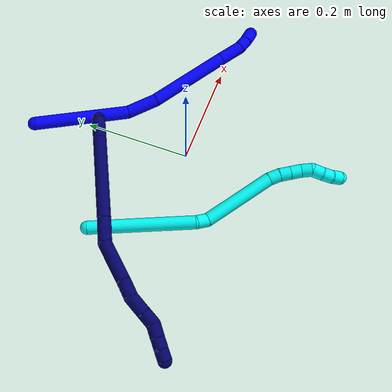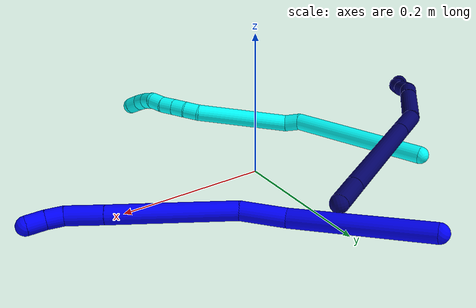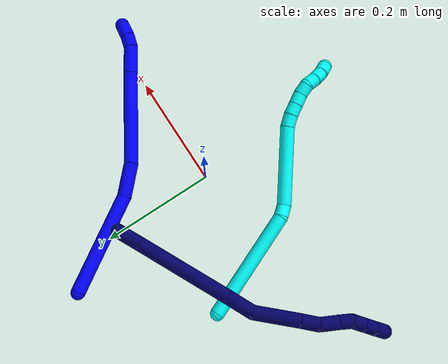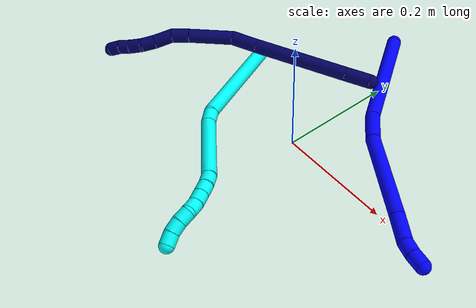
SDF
<sdf version="1.7">
 <world name="default">
  <model name="1">
   <static>0</static>
   <link name="1">
    <collision name="collision-cylinder-e_1_1_4">
     <pose>0.022331 -0.06528 -0.058959 2.30536 0.24861 0.548275</pose>
     <geometry><cylinder><radius>0.0125</radius><length>0.181508</length></cylinder></geometry>
     <surface>
      <friction><ode><mu>1.16</mu><mu2>1.16</mu2><slip1>0</slip1><slip2>0</slip2></ode></friction>
      <contact><ode><kp>1e+06</kp><kd>1</kd><max_vel>0</max_vel><min_depth>0.001</min_depth></ode></contact>
     </surface>
    </collision>
    <visual name="visual-cylinder-e_1_1_4">
     <pose>0.022331 -0.06528 -0.058959 2.30536 0.24861 0.548275</pose>
     <geometry><cylinder><radius>0.0125</radius><length>0.181508</length></cylinder></geometry>
     <material><ambient>0 0 1 1</ambient></material>
    </visual>
    <collision name="collision-cylinder-e_2_4_5">
     <pose>0.059158 -0.151987 -0.132573 2.17069 0.509287 0.916696</pose>
     <geometry><cylinder><radius>0.0125</radius><length>0.059465</length></cylinder></geometry>
     <surface>
      <friction><ode><mu>1.16</mu><mu2>1.16</mu2><slip1>0</slip1><slip2>0</slip2></ode></friction>
      <contact><ode><kp>1e+06</kp><kd>1</kd><max_vel>0</max_vel><min_depth>0.001</min_depth></ode></contact>
     </surface>
    </collision>
    <visual name="visual-cylinder-e_2_4_5">
     <pose>0.059158 -0.151987 -0.132573 2.17069 0.509287 0.916696</pose>
     <geometry><cylinder><radius>0.0125</radius><length>0.059465</length></cylinder></geometry>
     <material><ambient>0 0 1 1</ambient></material>
    </visual>
    <collision name="collision-cylinder-e_3_5_6">
     <pose>0.126122 -0.218362 -0.191152 2.34465 0.695647 1.42194</pose>
     <geometry><cylinder><radius>0.0125</radius><length>0.163739</length></cylinder></geometry>
     <surface>
      <friction><ode><mu>1.16</mu><mu2>1.16</mu2><slip1>0</slip1><slip2>0</slip2></ode></friction>
      <contact><ode><kp>1e+06</kp><kd>1</kd><max_vel>0</max_vel><min_depth>0.001</min_depth></ode></contact>
     </surface>
    </collision>
    <visual name="visual-cylinder-e_3_5_6">
     <pose>0.126122 -0.218362 -0.191152 2.34465 0.695647 1.42194</pose>
     <geometry><cylinder><radius>0.0125</radius><length>0.163739</length></cylinder></geometry>
     <material><ambient>0 0 1 1</ambient></material>
    </visual>
    <collision name="collision-cylinder-e_4_6_7">
     <pose>0.193956 -0.277043 -0.248332 2.33861 0.677776 1.38584</pose>
     <geometry><cylinder><radius>0.0125</radius><length>0.049006</length></cylinder></geometry>
     <surface>
      <friction><ode><mu>1.16</mu><mu2>1.16</mu2><slip1>0</slip1><slip2>0</slip2></ode></friction>
      <contact><ode><kp>1e+06</kp><kd>1</kd><max_vel>0</max_vel><min_depth>0.001</min_depth></ode></contact>
     </surface>
    </collision>
    <visual name="visual-cylinder-e_4_6_7">
     <pose>0.193956 -0.277043 -0.248332 2.33861 0.677776 1.38584</pose>
     <geometry><cylinder><radius>0.0125</radius><length>0.049006</length></cylinder></geometry>
     <material><ambient>0 0 1 1</ambient></material>
    </visual>
    <collision name="collision-cylinder-e_5_7_8">
     <pose>0.218266 -0.294428 -0.267357 2.57695 0.91881 2.08096</pose>
     <geometry><cylinder><radius>0.0125</radius><length>0.022506</length></cylinder></geometry>
     <surface>
      <friction><ode><mu>1.16</mu><mu2>1.16</mu2><slip1>0</slip1><slip2>0</slip2></ode></friction>
      <contact><ode><kp>1e+06</kp><kd>1</kd><max_vel>0</max_vel><min_depth>0.001</min_depth></ode></contact>
     </surface>
    </collision>
    <visual name="visual-cylinder-e_5_7_8">
     <pose>0.218266 -0.294428 -0.267357 2.57695 0.91881 2.08096</pose>
     <geometry><cylinder><radius>0.0125</radius><length>0.022506</length></cylinder></geometry>
     <material><ambient>0 0 1 1</ambient></material>
    </visual>
    <collision name="collision-cylinder-e_6_8_2">
     <pose>0.237359 -0.300367 -0.278881 2.76367 1.0229 2.48479</pose>
     <geometry><cylinder><radius>0.0125</radius><length>0.023776</length></cylinder></geometry>
     <surface>
      <friction><ode><mu>1.16</mu><mu2>1.16</mu2><slip1>0</slip1><slip2>0</slip2></ode></friction>
      <contact><ode><kp>1e+06</kp><kd>1</kd><max_vel>0</max_vel><min_depth>0.001</min_depth></ode></contact>
     </surface>
    </collision>
    <visual name="visual-cylinder-e_6_8_2">
     <pose>0.237359 -0.300367 -0.278881 2.76367 1.0229 2.48479</pose>
     <geometry><cylinder><radius>0.0125</radius><length>0.023776</length></cylinder></geometry>
     <material><ambient>0 0 1 1</ambient></material>
    </visual>
    <collision name="collision-sphere-2">
     <pose>0.247506 -0.302652 -0.284636 0 -0 0</pose>
     <geometry><sphere><radius>0.0125</radius></sphere></geometry>
     <surface>
      <friction><ode><mu>1.16</mu><mu2>1.16</mu2><slip1>0</slip1><slip2>0</slip2></ode></friction>
      <contact><ode><kp>1e+06</kp><kd>1</kd><max_vel>0</max_vel><min_depth>0.001</min_depth></ode></contact>
     </surface>
    </collision>
    <visual name="visual-sphere-2">
     <pose>0.247506 -0.302652 -0.284636 0 -0 0</pose>
     <geometry><sphere><radius>0.0125</radius></sphere></geometry>
     <material><ambient>0 0 1 1</ambient></material>
    </visual>
    <collision name="collision-sphere-4">
     <pose>0.044661 -0.13056 -0.117918 0 -0 0</pose>
     <geometry><sphere><radius>0.0125</radius></sphere></geometry>
     <surface>
      <friction><ode><mu>1.16</mu><mu2>1.16</mu2><slip1>0</slip1><slip2>0</slip2></ode></friction>
      <contact><ode><kp>1e+06</kp><kd>1</kd><max_vel>0</max_vel><min_depth>0.001</min_depth></ode></contact>
     </surface>
    </collision>
    <visual name="visual-sphere-4">
     <pose>0.044661 -0.13056 -0.117918 0 -0 0</pose>
     <geometry><sphere><radius>0.0125</radius></sphere></geometry>
     <material><ambient>0 0 1 1</ambient></material>
    </visual>
    <collision name="collision-sphere-1">
     <geometry><sphere><radius>0.0125</radius></sphere></geometry>
     <surface>
      <friction><ode><mu>1.16</mu><mu2>1.16</mu2><slip1>0</slip1><slip2>0</slip2></ode></friction>
      <contact><ode><kp>1e+06</kp><kd>1</kd><max_vel>0</max_vel><min_depth>0.001</min_depth></ode></contact>
     </surface>
    </collision>
    <visual name="visual-sphere-1">
     <geometry><sphere><radius>0.0125</radius></sphere></geometry>
     <material><ambient>0 0 1 1</ambient></material>
    </visual>
    <collision name="collision-sphere-8">
     <pose>0.227211 -0.298082 -0.273125 0 -0 0</pose>
     <geometry><sphere><radius>0.0125</radius></sphere></geometry>
     <surface>
      <friction><ode><mu>1.16</mu><mu2>1.16</mu2><slip1>0</slip1><slip2>0</slip2></ode></friction>
      <contact><ode><kp>1e+06</kp><kd>1</kd><max_vel>0</max_vel><min_depth>0.001</min_depth></ode></contact>
     </surface>
    </collision>
    <visual name="visual-sphere-8">
     <pose>0.227211 -0.298082 -0.273125 0 -0 0</pose>
     <geometry><sphere><radius>0.0125</radius></sphere></geometry>
     <material><ambient>0 0 1 1</ambient></material>
    </visual>
    <collision name="collision-sphere-5">
     <pose>0.073654 -0.173413 -0.147229 0 -0 0</pose>
     <geometry><sphere><radius>0.0125</radius></sphere></geometry>
     <surface>
      <friction><ode><mu>1.16</mu><mu2>1.16</mu2><slip1>0</slip1><slip2>0</slip2></ode></friction>
      <contact><ode><kp>1e+06</kp><kd>1</kd><max_vel>0</max_vel><min_depth>0.001</min_depth></ode></contact>
     </surface>
    </collision>
    <visual name="visual-sphere-5">
     <pose>0.073654 -0.173413 -0.147229 0 -0 0</pose>
     <geometry><sphere><radius>0.0125</radius></sphere></geometry>
     <material><ambient>0 0 1 1</ambient></material>
    </visual>
    <collision name="collision-sphere-6">
     <pose>0.178591 -0.263311 -0.235074 0 -0 0</pose>
     <geometry><sphere><radius>0.0125</radius></sphere></geometry>
     <surface>
      <friction><ode><mu>1.16</mu><mu2>1.16</mu2><slip1>0</slip1><slip2>0</slip2></ode></friction>
      <contact><ode><kp>1e+06</kp><kd>1</kd><max_vel>0</max_vel><min_depth>0.001</min_depth></ode></contact>
     </surface>
    </collision>
    <visual name="visual-sphere-6">
     <pose>0.178591 -0.263311 -0.235074 0 -0 0</pose>
     <geometry><sphere><radius>0.0125</radius></sphere></geometry>
     <material><ambient>0 0 1 1</ambient></material>
    </visual>
    <collision name="collision-sphere-7">
     <pose>0.209321 -0.290775 -0.261589 0 -0 0</pose>
     <geometry><sphere><radius>0.0125</radius></sphere></geometry>
     <surface>
      <friction><ode><mu>1.16</mu><mu2>1.16</mu2><slip1>0</slip1><slip2>0</slip2></ode></friction>
      <contact><ode><kp>1e+06</kp><kd>1</kd><max_vel>0</max_vel><min_depth>0.001</min_depth></ode></contact>
     </surface>
    </collision>
    <visual name="visual-sphere-7">
     <pose>0.209321 -0.290775 -0.261589 0 -0 0</pose>
     <geometry><sphere><radius>0.0125</radius></sphere></geometry>
     <material><ambient>0 0 1 1</ambient></material>
    </visual>
    <inertial>
     <pose>0.096566 -0.167972 -0.149403 0 -0 0</pose>
     <mass>0.5</mass>
     <inertia>
      <ixx>0.001053</ixx>
      <ixy>0</ixy>
      <ixz>0</ixz>
      <iyy>0.000434</iyy>
      <iyz>0</iyz>
      <izz>0.000184</izz>
     </inertia>
    </inertial>
   </link>
   <pose>-0.05213 0.288507 0.033532 -0.533135 -0.26988 0.292147</pose>
  </model>
  <model name="3">
   <static>0</static>
   <link name="3">
    <collision name="collision-cylinder-e_1_1_4">
     <pose>0.026673 -0.045091 0.083396 0.495665 0.274261 0.069807</pose>
     <geometry><cylinder><radius>0.0125</radius><length>0.196972</length></cylinder></geometry>
     <surface>
      <friction><ode><mu>1.16</mu><mu2>1.16</mu2><slip1>0</slip1><slip2>0</slip2></ode></friction>
      <contact><ode><kp>1e+06</kp><kd>1</kd><max_vel>0</max_vel><min_depth>0.001</min_depth></ode></contact>
     </surface>
    </collision>
    <visual name="visual-cylinder-e_1_1_4">
     <pose>0.026673 -0.045091 0.083396 0.495665 0.274261 0.069807</pose>
     <geometry><cylinder><radius>0.0125</radius><length>0.196972</length></cylinder></geometry>
     <material><ambient>0.003922 1 0.996078 1</ambient></material>
    </visual>
    <collision name="collision-cylinder-e_2_4_5">
     <pose>0.05732 -0.098474 0.173483 0.891786 0.356904 0.172009</pose>
     <geometry><cylinder><radius>0.0125</radius><length>0.022744</length></cylinder></geometry>
     <surface>
      <friction><ode><mu>1.16</mu><mu2>1.16</mu2><slip1>0</slip1><slip2>0</slip2></ode></friction>
      <contact><ode><kp>1e+06</kp><kd>1</kd><max_vel>0</max_vel><min_depth>0.001</min_depth></ode></contact>
     </surface>
    </collision>
    <visual name="visual-cylinder-e_2_4_5">
     <pose>0.05732 -0.098474 0.173483 0.891786 0.356904 0.172009</pose>
     <geometry><cylinder><radius>0.0125</radius><length>0.022744</length></cylinder></geometry>
     <material><ambient>0.003922 1 0.996078 1</ambient></material>
    </visual>
    <collision name="collision-cylinder-e_3_5_6">
     <pose>0.109946 -0.139719 0.216183 0.741118 0.78377 0.318391</pose>
     <geometry><cylinder><radius>0.0125</radius><length>0.137835</length></cylinder></geometry>
     <surface>
      <friction><ode><mu>1.16</mu><mu2>1.16</mu2><slip1>0</slip1><slip2>0</slip2></ode></friction>
      <contact><ode><kp>1e+06</kp><kd>1</kd><max_vel>0</max_vel><min_depth>0.001</min_depth></ode></contact>
     </surface>
    </collision>
    <visual name="visual-cylinder-e_3_5_6">
     <pose>0.109946 -0.139719 0.216183 0.741118 0.78377 0.318391</pose>
     <geometry><cylinder><radius>0.0125</radius><length>0.137835</length></cylinder></geometry>
     <material><ambient>0.003922 1 0.996078 1</ambient></material>
    </visual>
    <collision name="collision-cylinder-e_4_6_7">
     <pose>0.164535 -0.17755 0.259741 0.573742 0.583681 0.17679</pose>
     <geometry><cylinder><radius>0.0125</radius><length>0.021543</length></cylinder></geometry>
     <surface>
      <friction><ode><mu>1.16</mu><mu2>1.16</mu2><slip1>0</slip1><slip2>0</slip2></ode></friction>
      <contact><ode><kp>1e+06</kp><kd>1</kd><max_vel>0</max_vel><min_depth>0.001</min_depth></ode></contact>
     </surface>
    </collision>
    <visual name="visual-cylinder-e_4_6_7">
     <pose>0.164535 -0.17755 0.259741 0.573742 0.583681 0.17679</pose>
     <geometry><cylinder><radius>0.0125</radius><length>0.021543</length></cylinder></geometry>
     <material><ambient>0.003922 1 0.996078 1</ambient></material>
    </visual>
    <collision name="collision-cylinder-e_5_7_8">
     <pose>0.174546 -0.187333 0.275202 0.554841 0.412697 0.119077</pose>
     <geometry><cylinder><radius>0.0125</radius><length>0.020322</length></cylinder></geometry>
     <surface>
      <friction><ode><mu>1.16</mu><mu2>1.16</mu2><slip1>0</slip1><slip2>0</slip2></ode></friction>
      <contact><ode><kp>1e+06</kp><kd>1</kd><max_vel>0</max_vel><min_depth>0.001</min_depth></ode></contact>
     </surface>
    </collision>
    <visual name="visual-cylinder-e_5_7_8">
     <pose>0.174546 -0.187333 0.275202 0.554841 0.412697 0.119077</pose>
     <geometry><cylinder><radius>0.0125</radius><length>0.020322</length></cylinder></geometry>
     <material><ambient>0.003922 1 0.996078 1</ambient></material>
    </visual>
    <collision name="collision-cylinder-e_6_8_9">
     <pose>0.182771 -0.19728 0.290972 0.570597 0.418103 0.124287</pose>
     <geometry><cylinder><radius>0.0125</radius><length>0.020437</length></cylinder></geometry>
     <surface>
      <friction><ode><mu>1.16</mu><mu2>1.16</mu2><slip1>0</slip1><slip2>0</slip2></ode></friction>
      <contact><ode><kp>1e+06</kp><kd>1</kd><max_vel>0</max_vel><min_depth>0.001</min_depth></ode></contact>
     </surface>
    </collision>
    <visual name="visual-cylinder-e_6_8_9">
     <pose>0.182771 -0.19728 0.290972 0.570597 0.418103 0.124287</pose>
     <geometry><cylinder><radius>0.0125</radius><length>0.020437</length></cylinder></geometry>
     <material><ambient>0.003922 1 0.996078 1</ambient></material>
    </visual>
    <collision name="collision-cylinder-e_7_9_10">
     <pose>0.190005 -0.206052 0.307594 0.402277 0.313289 0.064384</pose>
     <geometry><cylinder><radius>0.0125</radius><length>0.02002</length></cylinder></geometry>
     <surface>
      <friction><ode><mu>1.16</mu><mu2>1.16</mu2><slip1>0</slip1><slip2>0</slip2></ode></friction>
      <contact><ode><kp>1e+06</kp><kd>1</kd><max_vel>0</max_vel><min_depth>0.001</min_depth></ode></contact>
     </surface>
    </collision>
    <visual name="visual-cylinder-e_7_9_10">
     <pose>0.190005 -0.206052 0.307594 0.402277 0.313289 0.064384</pose>
     <geometry><cylinder><radius>0.0125</radius><length>0.02002</length></cylinder></geometry>
     <material><ambient>0.003922 1 0.996078 1</ambient></material>
    </visual>
    <collision name="collision-cylinder-e_8_10_11">
     <pose>0.191738 -0.215721 0.32434 0.639678 -0.13502 -0.044781</pose>
     <geometry><cylinder><radius>0.0125</radius><length>0.020085</length></cylinder></geometry>
     <surface>
      <friction><ode><mu>1.16</mu><mu2>1.16</mu2><slip1>0</slip1><slip2>0</slip2></ode></friction>
      <contact><ode><kp>1e+06</kp><kd>1</kd><max_vel>0</max_vel><min_depth>0.001</min_depth></ode></contact>
     </surface>
    </collision>
    <visual name="visual-cylinder-e_8_10_11">
     <pose>0.191738 -0.215721 0.32434 0.639678 -0.13502 -0.044781</pose>
     <geometry><cylinder><radius>0.0125</radius><length>0.020085</length></cylinder></geometry>
     <material><ambient>0.003922 1 0.996078 1</ambient></material>
    </visual>
    <collision name="collision-cylinder-e_9_11_12">
     <pose>0.189565 -0.228803 0.339286 0.798091 -0.082126 -0.034646</pose>
     <geometry><cylinder><radius>0.0125</radius><length>0.020015</length></cylinder></geometry>
     <surface>
      <friction><ode><mu>1.16</mu><mu2>1.16</mu2><slip1>0</slip1><slip2>0</slip2></ode></friction>
      <contact><ode><kp>1e+06</kp><kd>1</kd><max_vel>0</max_vel><min_depth>0.001</min_depth></ode></contact>
     </surface>
    </collision>
    <visual name="visual-cylinder-e_9_11_12">
     <pose>0.189565 -0.228803 0.339286 0.798091 -0.082126 -0.034646</pose>
     <geometry><cylinder><radius>0.0125</radius><length>0.020015</length></cylinder></geometry>
     <material><ambient>0.003922 1 0.996078 1</ambient></material>
    </visual>
    <collision name="collision-cylinder-e_10_12_2">
     <pose>0.189357 -0.244184 0.351905 0.96928 0.061275 0.03227</pose>
     <geometry><cylinder><radius>0.0125</radius><length>0.020027</length></cylinder></geometry>
     <surface>
      <friction><ode><mu>1.16</mu><mu2>1.16</mu2><slip1>0</slip1><slip2>0</slip2></ode></friction>
      <contact><ode><kp>1e+06</kp><kd>1</kd><max_vel>0</max_vel><min_depth>0.001</min_depth></ode></contact>
     </surface>
    </collision>
    <visual name="visual-cylinder-e_10_12_2">
     <pose>0.189357 -0.244184 0.351905 0.96928 0.061275 0.03227</pose>
     <geometry><cylinder><radius>0.0125</radius><length>0.020027</length></cylinder></geometry>
     <material><ambient>0.003922 1 0.996078 1</ambient></material>
    </visual>
    <collision name="collision-sphere-2">
     <pose>0.18997 -0.252425 0.357561 0 -0 0</pose>
     <geometry><sphere><radius>0.0125</radius></sphere></geometry>
     <surface>
      <friction><ode><mu>1.16</mu><mu2>1.16</mu2><slip1>0</slip1><slip2>0</slip2></ode></friction>
      <contact><ode><kp>1e+06</kp><kd>1</kd><max_vel>0</max_vel><min_depth>0.001</min_depth></ode></contact>
     </surface>
    </collision>
    <visual name="visual-sphere-2">
     <pose>0.18997 -0.252425 0.357561 0 -0 0</pose>
     <geometry><sphere><radius>0.0125</radius></sphere></geometry>
     <material><ambient>0.003922 1 0.996078 1</ambient></material>
    </visual>
    <collision name="collision-sphere-12">
     <pose>0.188744 -0.235944 0.346249 0 -0 0</pose>
     <geometry><sphere><radius>0.0125</radius></sphere></geometry>
     <surface>
      <friction><ode><mu>1.16</mu><mu2>1.16</mu2><slip1>0</slip1><slip2>0</slip2></ode></friction>
      <contact><ode><kp>1e+06</kp><kd>1</kd><max_vel>0</max_vel><min_depth>0.001</min_depth></ode></contact>
     </surface>
    </collision>
    <visual name="visual-sphere-12">
     <pose>0.188744 -0.235944 0.346249 0 -0 0</pose>
     <geometry><sphere><radius>0.0125</radius></sphere></geometry>
     <material><ambient>0.003922 1 0.996078 1</ambient></material>
    </visual>
    <collision name="collision-sphere-11">
     <pose>0.190386 -0.221661 0.332324 0 -0 0</pose>
     <geometry><sphere><radius>0.0125</radius></sphere></geometry>
     <surface>
      <friction><ode><mu>1.16</mu><mu2>1.16</mu2><slip1>0</slip1><slip2>0</slip2></ode></friction>
      <contact><ode><kp>1e+06</kp><kd>1</kd><max_vel>0</max_vel><min_depth>0.001</min_depth></ode></contact>
     </surface>
    </collision>
    <visual name="visual-sphere-11">
     <pose>0.190386 -0.221661 0.332324 0 -0 0</pose>
     <geometry><sphere><radius>0.0125</radius></sphere></geometry>
     <material><ambient>0.003922 1 0.996078 1</ambient></material>
    </visual>
    <collision name="collision-sphere-10">
     <pose>0.19309 -0.209781 0.316356 0 -0 0</pose>
     <geometry><sphere><radius>0.0125</radius></sphere></geometry>
     <surface>
      <friction><ode><mu>1.16</mu><mu2>1.16</mu2><slip1>0</slip1><slip2>0</slip2></ode></friction>
      <contact><ode><kp>1e+06</kp><kd>1</kd><max_vel>0</max_vel><min_depth>0.001</min_depth></ode></contact>
     </surface>
    </collision>
    <visual name="visual-sphere-10">
     <pose>0.19309 -0.209781 0.316356 0 -0 0</pose>
     <geometry><sphere><radius>0.0125</radius></sphere></geometry>
     <material><ambient>0.003922 1 0.996078 1</ambient></material>
    </visual>
    <collision name="collision-sphere-9">
     <pose>0.18692 -0.202324 0.298831 0 -0 0</pose>
     <geometry><sphere><radius>0.0125</radius></sphere></geometry>
     <surface>
      <friction><ode><mu>1.16</mu><mu2>1.16</mu2><slip1>0</slip1><slip2>0</slip2></ode></friction>
      <contact><ode><kp>1e+06</kp><kd>1</kd><max_vel>0</max_vel><min_depth>0.001</min_depth></ode></contact>
     </surface>
    </collision>
    <visual name="visual-sphere-9">
     <pose>0.18692 -0.202324 0.298831 0 -0 0</pose>
     <geometry><sphere><radius>0.0125</radius></sphere></geometry>
     <material><ambient>0.003922 1 0.996078 1</ambient></material>
    </visual>
    <collision name="collision-sphere-4">
     <pose>0.053347 -0.090182 0.166791 0 -0 0</pose>
     <geometry><sphere><radius>0.0125</radius></sphere></geometry>
     <surface>
      <friction><ode><mu>1.16</mu><mu2>1.16</mu2><slip1>0</slip1><slip2>0</slip2></ode></friction>
      <contact><ode><kp>1e+06</kp><kd>1</kd><max_vel>0</max_vel><min_depth>0.001</min_depth></ode></contact>
     </surface>
    </collision>
    <visual name="visual-sphere-4">
     <pose>0.053347 -0.090182 0.166791 0 -0 0</pose>
     <geometry><sphere><radius>0.0125</radius></sphere></geometry>
     <material><ambient>0.003922 1 0.996078 1</ambient></material>
    </visual>
    <collision name="collision-sphere-1">
     <geometry><sphere><radius>0.0125</radius></sphere></geometry>
     <surface>
      <friction><ode><mu>1.16</mu><mu2>1.16</mu2><slip1>0</slip1><slip2>0</slip2></ode></friction>
      <contact><ode><kp>1e+06</kp><kd>1</kd><max_vel>0</max_vel><min_depth>0.001</min_depth></ode></contact>
     </surface>
    </collision>
    <visual name="visual-sphere-1">
     <geometry><sphere><radius>0.0125</radius></sphere></geometry>
     <material><ambient>0.003922 1 0.996078 1</ambient></material>
    </visual>
    <collision name="collision-sphere-8">
     <pose>0.178622 -0.192236 0.283114 0 -0 0</pose>
     <geometry><sphere><radius>0.0125</radius></sphere></geometry>
     <surface>
      <friction><ode><mu>1.16</mu><mu2>1.16</mu2><slip1>0</slip1><slip2>0</slip2></ode></friction>
      <contact><ode><kp>1e+06</kp><kd>1</kd><max_vel>0</max_vel><min_depth>0.001</min_depth></ode></contact>
     </surface>
    </collision>
    <visual name="visual-sphere-8">
     <pose>0.178622 -0.192236 0.283114 0 -0 0</pose>
     <geometry><sphere><radius>0.0125</radius></sphere></geometry>
     <material><ambient>0.003922 1 0.996078 1</ambient></material>
    </visual>
    <collision name="collision-sphere-5">
     <pose>0.061293 -0.106765 0.180175 0 -0 0</pose>
     <geometry><sphere><radius>0.0125</radius></sphere></geometry>
     <surface>
      <friction><ode><mu>1.16</mu><mu2>1.16</mu2><slip1>0</slip1><slip2>0</slip2></ode></friction>
      <contact><ode><kp>1e+06</kp><kd>1</kd><max_vel>0</max_vel><min_depth>0.001</min_depth></ode></contact>
     </surface>
    </collision>
    <visual name="visual-sphere-5">
     <pose>0.061293 -0.106765 0.180175 0 -0 0</pose>
     <geometry><sphere><radius>0.0125</radius></sphere></geometry>
     <material><ambient>0.003922 1 0.996078 1</ambient></material>
    </visual>
    <collision name="collision-sphere-6">
     <pose>0.158599 -0.172672 0.252192 0 -0 0</pose>
     <geometry><sphere><radius>0.0125</radius></sphere></geometry>
     <surface>
      <friction><ode><mu>1.16</mu><mu2>1.16</mu2><slip1>0</slip1><slip2>0</slip2></ode></friction>
      <contact><ode><kp>1e+06</kp><kd>1</kd><max_vel>0</max_vel><min_depth>0.001</min_depth></ode></contact>
     </surface>
    </collision>
    <visual name="visual-sphere-6">
     <pose>0.158599 -0.172672 0.252192 0 -0 0</pose>
     <geometry><sphere><radius>0.0125</radius></sphere></geometry>
     <material><ambient>0.003922 1 0.996078 1</ambient></material>
    </visual>
    <collision name="collision-sphere-7">
     <pose>0.170471 -0.182429 0.26729 0 -0 0</pose>
     <geometry><sphere><radius>0.0125</radius></sphere></geometry>
     <surface>
      <friction><ode><mu>1.16</mu><mu2>1.16</mu2><slip1>0</slip1><slip2>0</slip2></ode></friction>
      <contact><ode><kp>1e+06</kp><kd>1</kd><max_vel>0</max_vel><min_depth>0.001</min_depth></ode></contact>
     </surface>
    </collision>
    <visual name="visual-sphere-7">
     <pose>0.170471 -0.182429 0.26729 0 -0 0</pose>
     <geometry><sphere><radius>0.0125</radius></sphere></geometry>
     <material><ambient>0.003922 1 0.996078 1</ambient></material>
    </visual>
    <inertial>
     <pose>0.095561 -0.119942 0.187631 0 -0 0</pose>
     <mass>0.5</mass>
     <inertia>
      <ixx>0.000889</ixx>
      <ixy>0</ixy>
      <ixz>0</ixz>
      <iyy>0.000845</iyy>
      <iyz>0</iyz>
      <izz>0.000102</izz>
     </inertia>
    </inertial>
   </link>
   <pose>-0.209281 0.111306 0.012351 1.20726 -0.516909 0.102642</pose>
  </model>
  <model name="7">
   <static>0</static>
   <link name="7">
    <collision name="collision-cylinder-e_1_1_4">
     <pose>-0.016923 0.007039 -0.013927 -2.67361 -0.825907 2.14513</pose>
     <geometry><cylinder><radius>0.0125</radius><length>0.046039</length></cylinder></geometry>
     <surface>
      <friction><ode><mu>1.16</mu><mu2>1.16</mu2><slip1>0</slip1><slip2>0</slip2></ode></friction>
      <contact><ode><kp>1e+06</kp><kd>1</kd><max_vel>0</max_vel><min_depth>0.001</min_depth></ode></contact>
     </surface>
    </collision>
    <visual name="visual-cylinder-e_1_1_4">
     <pose>-0.016923 0.007039 -0.013927 -2.67361 -0.825907 2.14513</pose>
     <geometry><cylinder><radius>0.0125</radius><length>0.046039</length></cylinder></geometry>
     <material><ambient>0.003922 0 0.403922 1</ambient></material>
    </visual>
    <collision name="collision-cylinder-e_2_4_5">
     <pose>-0.096342 0.040196 -0.080287 -2.67945 -0.817751 2.14671</pose>
     <geometry><cylinder><radius>0.0125</radius><length>0.171314</length></cylinder></geometry>
     <surface>
      <friction><ode><mu>1.16</mu><mu2>1.16</mu2><slip1>0</slip1><slip2>0</slip2></ode></friction>
      <contact><ode><kp>1e+06</kp><kd>1</kd><max_vel>0</max_vel><min_depth>0.001</min_depth></ode></contact>
     </surface>
    </collision>
    <visual name="visual-cylinder-e_2_4_5">
     <pose>-0.096342 0.040196 -0.080287 -2.67945 -0.817751 2.14671</pose>
     <geometry><cylinder><radius>0.0125</radius><length>0.171314</length></cylinder></geometry>
     <material><ambient>0.003922 0 0.403922 1</ambient></material>
    </visual>
    <collision name="collision-cylinder-e_3_5_6">
     <pose>-0.176325 0.073939 -0.147945 -2.67729 -0.798677 2.1203</pose>
     <geometry><cylinder><radius>0.0125</radius><length>0.048816</length></cylinder></geometry>
     <surface>
      <friction><ode><mu>1.16</mu><mu2>1.16</mu2><slip1>0</slip1><slip2>0</slip2></ode></friction>
      <contact><ode><kp>1e+06</kp><kd>1</kd><max_vel>0</max_vel><min_depth>0.001</min_depth></ode></contact>
     </surface>
    </collision>
    <visual name="visual-cylinder-e_3_5_6">
     <pose>-0.176325 0.073939 -0.147945 -2.67729 -0.798677 2.1203</pose>
     <geometry><cylinder><radius>0.0125</radius><length>0.048816</length></cylinder></geometry>
     <material><ambient>0.003922 0 0.403922 1</ambient></material>
    </visual>
    <collision name="collision-cylinder-e_4_6_7">
     <pose>-0.227814 0.099052 -0.174997 -2.16539 -1.01516 1.61721</pose>
     <geometry><cylinder><radius>0.0125</radius><length>0.080045</length></cylinder></geometry>
     <surface>
      <friction><ode><mu>1.16</mu><mu2>1.16</mu2><slip1>0</slip1><slip2>0</slip2></ode></friction>
      <contact><ode><kp>1e+06</kp><kd>1</kd><max_vel>0</max_vel><min_depth>0.001</min_depth></ode></contact>
     </surface>
    </collision>
    <visual name="visual-cylinder-e_4_6_7">
     <pose>-0.227814 0.099052 -0.174997 -2.16539 -1.01516 1.61721</pose>
     <geometry><cylinder><radius>0.0125</radius><length>0.080045</length></cylinder></geometry>
     <material><ambient>0.003922 0 0.403922 1</ambient></material>
    </visual>
    <collision name="collision-cylinder-e_5_7_8">
     <pose>-0.275655 0.122217 -0.19161 -2.27143 -1.07836 1.82069</pose>
     <geometry><cylinder><radius>0.0125</radius><length>0.031412</length></cylinder></geometry>
     <surface>
      <friction><ode><mu>1.16</mu><mu2>1.16</mu2><slip1>0</slip1><slip2>0</slip2></ode></friction>
      <contact><ode><kp>1e+06</kp><kd>1</kd><max_vel>0</max_vel><min_depth>0.001</min_depth></ode></contact>
     </surface>
    </collision>
    <visual name="visual-cylinder-e_5_7_8">
     <pose>-0.275655 0.122217 -0.19161 -2.27143 -1.07836 1.82069</pose>
     <geometry><cylinder><radius>0.0125</radius><length>0.031412</length></cylinder></geometry>
     <material><ambient>0.003922 0 0.403922 1</ambient></material>
    </visual>
    <collision name="collision-cylinder-e_6_8_9">
     <pose>-0.306021 0.132088 -0.195939 -1.46208 -1.32078 1.21683</pose>
     <geometry><cylinder><radius>0.0125</radius><length>0.034111</length></cylinder></geometry>
     <surface>
      <friction><ode><mu>1.16</mu><mu2>1.16</mu2><slip1>0</slip1><slip2>0</slip2></ode></friction>
      <contact><ode><kp>1e+06</kp><kd>1</kd><max_vel>0</max_vel><min_depth>0.001</min_depth></ode></contact>
     </surface>
    </collision>
    <visual name="visual-cylinder-e_6_8_9">
     <pose>-0.306021 0.132088 -0.195939 -1.46208 -1.32078 1.21683</pose>
     <geometry><cylinder><radius>0.0125</radius><length>0.034111</length></cylinder></geometry>
     <material><ambient>0.003922 0 0.403922 1</ambient></material>
    </visual>
    <collision name="collision-cylinder-e_7_9_10">
     <pose>-0.334026 0.140533 -0.195595 -1.59742 -1.21613 1.24121</pose>
     <geometry><cylinder><radius>0.0125</radius><length>0.024485</length></cylinder></geometry>
     <surface>
      <friction><ode><mu>1.16</mu><mu2>1.16</mu2><slip1>0</slip1><slip2>0</slip2></ode></friction>
      <contact><ode><kp>1e+06</kp><kd>1</kd><max_vel>0</max_vel><min_depth>0.001</min_depth></ode></contact>
     </surface>
    </collision>
    <visual name="visual-cylinder-e_7_9_10">
     <pose>-0.334026 0.140533 -0.195595 -1.59742 -1.21613 1.24121</pose>
     <geometry><cylinder><radius>0.0125</radius><length>0.024485</length></cylinder></geometry>
     <material><ambient>0.003922 0 0.403922 1</ambient></material>
    </visual>
    <collision name="collision-cylinder-e_8_10_11">
     <pose>-0.356609 0.145871 -0.199709 -2.87615 -1.21335 2.76148</pose>
     <geometry><cylinder><radius>0.0125</radius><length>0.023703</length></cylinder></geometry>
     <surface>
      <friction><ode><mu>1.16</mu><mu2>1.16</mu2><slip1>0</slip1><slip2>0</slip2></ode></friction>
      <contact><ode><kp>1e+06</kp><kd>1</kd><max_vel>0</max_vel><min_depth>0.001</min_depth></ode></contact>
     </surface>
    </collision>
    <visual name="visual-cylinder-e_8_10_11">
     <pose>-0.356609 0.145871 -0.199709 -2.87615 -1.21335 2.76148</pose>
     <geometry><cylinder><radius>0.0125</radius><length>0.023703</length></cylinder></geometry>
     <material><ambient>0.003922 0 0.403922 1</ambient></material>
    </visual>
    <collision name="collision-cylinder-e_9_11_12">
     <pose>-0.376765 0.149041 -0.207453 -2.63387 -1.12896 2.36382</pose>
     <geometry><cylinder><radius>0.0125</radius><length>0.020031</length></cylinder></geometry>
     <surface>
      <friction><ode><mu>1.16</mu><mu2>1.16</mu2><slip1>0</slip1><slip2>0</slip2></ode></friction>
      <contact><ode><kp>1e+06</kp><kd>1</kd><max_vel>0</max_vel><min_depth>0.001</min_depth></ode></contact>
     </surface>
    </collision>
    <visual name="visual-cylinder-e_9_11_12">
     <pose>-0.376765 0.149041 -0.207453 -2.63387 -1.12896 2.36382</pose>
     <geometry><cylinder><radius>0.0125</radius><length>0.020031</length></cylinder></geometry>
     <material><ambient>0.003922 0 0.403922 1</ambient></material>
    </visual>
    <collision name="collision-cylinder-e_10_12_2">
     <pose>-0.395425 0.151312 -0.214046 -3.0755 -1.28177 3.05301</pose>
     <geometry><cylinder><radius>0.0125</radius><length>0.020044</length></cylinder></geometry>
     <surface>
      <friction><ode><mu>1.16</mu><mu2>1.16</mu2><slip1>0</slip1><slip2>0</slip2></ode></friction>
      <contact><ode><kp>1e+06</kp><kd>1</kd><max_vel>0</max_vel><min_depth>0.001</min_depth></ode></contact>
     </surface>
    </collision>
    <visual name="visual-cylinder-e_10_12_2">
     <pose>-0.395425 0.151312 -0.214046 -3.0755 -1.28177 3.05301</pose>
     <geometry><cylinder><radius>0.0125</radius><length>0.020044</length></cylinder></geometry>
     <material><ambient>0.003922 0 0.403922 1</ambient></material>
    </visual>
    <collision name="collision-sphere-2">
     <pose>-0.405031 0.1515 -0.216896 0 -0 0</pose>
     <geometry><sphere><radius>0.0125</radius></sphere></geometry>
     <surface>
      <friction><ode><mu>1.16</mu><mu2>1.16</mu2><slip1>0</slip1><slip2>0</slip2></ode></friction>
      <contact><ode><kp>1e+06</kp><kd>1</kd><max_vel>0</max_vel><min_depth>0.001</min_depth></ode></contact>
     </surface>
    </collision>
    <visual name="visual-sphere-2">
     <pose>-0.405031 0.1515 -0.216896 0 -0 0</pose>
     <geometry><sphere><radius>0.0125</radius></sphere></geometry>
     <material><ambient>0.003922 0 0.403922 1</ambient></material>
    </visual>
    <collision name="collision-sphere-12">
     <pose>-0.385819 0.151123 -0.211195 0 -0 0</pose>
     <geometry><sphere><radius>0.0125</radius></sphere></geometry>
     <surface>
      <friction><ode><mu>1.16</mu><mu2>1.16</mu2><slip1>0</slip1><slip2>0</slip2></ode></friction>
      <contact><ode><kp>1e+06</kp><kd>1</kd><max_vel>0</max_vel><min_depth>0.001</min_depth></ode></contact>
     </surface>
    </collision>
    <visual name="visual-sphere-12">
     <pose>-0.385819 0.151123 -0.211195 0 -0 0</pose>
     <geometry><sphere><radius>0.0125</radius></sphere></geometry>
     <material><ambient>0.003922 0 0.403922 1</ambient></material>
    </visual>
    <collision name="collision-sphere-11">
     <pose>-0.367711 0.146958 -0.20371 0 -0 0</pose>
     <geometry><sphere><radius>0.0125</radius></sphere></geometry>
     <surface>
      <friction><ode><mu>1.16</mu><mu2>1.16</mu2><slip1>0</slip1><slip2>0</slip2></ode></friction>
      <contact><ode><kp>1e+06</kp><kd>1</kd><max_vel>0</max_vel><min_depth>0.001</min_depth></ode></contact>
     </surface>
    </collision>
    <visual name="visual-sphere-11">
     <pose>-0.367711 0.146958 -0.20371 0 -0 0</pose>
     <geometry><sphere><radius>0.0125</radius></sphere></geometry>
     <material><ambient>0.003922 0 0.403922 1</ambient></material>
    </visual>
    <collision name="collision-sphere-10">
     <pose>-0.345507 0.144783 -0.195708 0 -0 0</pose>
     <geometry><sphere><radius>0.0125</radius></sphere></geometry>
     <surface>
      <friction><ode><mu>1.16</mu><mu2>1.16</mu2><slip1>0</slip1><slip2>0</slip2></ode></friction>
      <contact><ode><kp>1e+06</kp><kd>1</kd><max_vel>0</max_vel><min_depth>0.001</min_depth></ode></contact>
     </surface>
    </collision>
    <visual name="visual-sphere-10">
     <pose>-0.345507 0.144783 -0.195708 0 -0 0</pose>
     <geometry><sphere><radius>0.0125</radius></sphere></geometry>
     <material><ambient>0.003922 0 0.403922 1</ambient></material>
    </visual>
    <collision name="collision-sphere-9">
     <pose>-0.322546 0.136283 -0.195481 0 -0 0</pose>
     <geometry><sphere><radius>0.0125</radius></sphere></geometry>
     <surface>
      <friction><ode><mu>1.16</mu><mu2>1.16</mu2><slip1>0</slip1><slip2>0</slip2></ode></friction>
      <contact><ode><kp>1e+06</kp><kd>1</kd><max_vel>0</max_vel><min_depth>0.001</min_depth></ode></contact>
     </surface>
    </collision>
    <visual name="visual-sphere-9">
     <pose>-0.322546 0.136283 -0.195481 0 -0 0</pose>
     <geometry><sphere><radius>0.0125</radius></sphere></geometry>
     <material><ambient>0.003922 0 0.403922 1</ambient></material>
    </visual>
    <collision name="collision-sphere-4">
     <pose>-0.033846 0.014078 -0.027854 0 -0 0</pose>
     <geometry><sphere><radius>0.0125</radius></sphere></geometry>
     <surface>
      <friction><ode><mu>1.16</mu><mu2>1.16</mu2><slip1>0</slip1><slip2>0</slip2></ode></friction>
      <contact><ode><kp>1e+06</kp><kd>1</kd><max_vel>0</max_vel><min_depth>0.001</min_depth></ode></contact>
     </surface>
    </collision>
    <visual name="visual-sphere-4">
     <pose>-0.033846 0.014078 -0.027854 0 -0 0</pose>
     <geometry><sphere><radius>0.0125</radius></sphere></geometry>
     <material><ambient>0.003922 0 0.403922 1</ambient></material>
    </visual>
    <collision name="collision-sphere-1">
     <geometry><sphere><radius>0.0125</radius></sphere></geometry>
     <surface>
      <friction><ode><mu>1.16</mu><mu2>1.16</mu2><slip1>0</slip1><slip2>0</slip2></ode></friction>
      <contact><ode><kp>1e+06</kp><kd>1</kd><max_vel>0</max_vel><min_depth>0.001</min_depth></ode></contact>
     </surface>
    </collision>
    <visual name="visual-sphere-1">
     <geometry><sphere><radius>0.0125</radius></sphere></geometry>
     <material><ambient>0.003922 0 0.403922 1</ambient></material>
    </visual>
    <collision name="collision-sphere-8">
     <pose>-0.289495 0.127893 -0.196397 0 -0 0</pose>
     <geometry><sphere><radius>0.0125</radius></sphere></geometry>
     <surface>
      <friction><ode><mu>1.16</mu><mu2>1.16</mu2><slip1>0</slip1><slip2>0</slip2></ode></friction>
      <contact><ode><kp>1e+06</kp><kd>1</kd><max_vel>0</max_vel><min_depth>0.001</min_depth></ode></contact>
     </surface>
    </collision>
    <visual name="visual-sphere-8">
     <pose>-0.289495 0.127893 -0.196397 0 -0 0</pose>
     <geometry><sphere><radius>0.0125</radius></sphere></geometry>
     <material><ambient>0.003922 0 0.403922 1</ambient></material>
    </visual>
    <collision name="collision-sphere-5">
     <pose>-0.158839 0.066314 -0.13272 0 -0 0</pose>
     <geometry><sphere><radius>0.0125</radius></sphere></geometry>
     <surface>
      <friction><ode><mu>1.16</mu><mu2>1.16</mu2><slip1>0</slip1><slip2>0</slip2></ode></friction>
      <contact><ode><kp>1e+06</kp><kd>1</kd><max_vel>0</max_vel><min_depth>0.001</min_depth></ode></contact>
     </surface>
    </collision>
    <visual name="visual-sphere-5">
     <pose>-0.158839 0.066314 -0.13272 0 -0 0</pose>
     <geometry><sphere><radius>0.0125</radius></sphere></geometry>
     <material><ambient>0.003922 0 0.403922 1</ambient></material>
    </visual>
    <collision name="collision-sphere-6">
     <pose>-0.193812 0.081564 -0.163171 0 -0 0</pose>
     <geometry><sphere><radius>0.0125</radius></sphere></geometry>
     <surface>
      <friction><ode><mu>1.16</mu><mu2>1.16</mu2><slip1>0</slip1><slip2>0</slip2></ode></friction>
      <contact><ode><kp>1e+06</kp><kd>1</kd><max_vel>0</max_vel><min_depth>0.001</min_depth></ode></contact>
     </surface>
    </collision>
    <visual name="visual-sphere-6">
     <pose>-0.193812 0.081564 -0.163171 0 -0 0</pose>
     <geometry><sphere><radius>0.0125</radius></sphere></geometry>
     <material><ambient>0.003922 0 0.403922 1</ambient></material>
    </visual>
    <collision name="collision-sphere-7">
     <pose>-0.261815 0.11654 -0.186823 0 -0 0</pose>
     <geometry><sphere><radius>0.0125</radius></sphere></geometry>
     <surface>
      <friction><ode><mu>1.16</mu><mu2>1.16</mu2><slip1>0</slip1><slip2>0</slip2></ode></friction>
      <contact><ode><kp>1e+06</kp><kd>1</kd><max_vel>0</max_vel><min_depth>0.001</min_depth></ode></contact>
     </surface>
    </collision>
    <visual name="visual-sphere-7">
     <pose>-0.261815 0.11654 -0.186823 0 -0 0</pose>
     <geometry><sphere><radius>0.0125</radius></sphere></geometry>
     <material><ambient>0.003922 0 0.403922 1</ambient></material>
    </visual>
    <inertial>
     <pose>-0.190657 0.08002 -0.132593 0 -0 0</pose>
     <mass>0.5</mass>
     <inertia>
      <ixx>8.5e-05</ixx>
      <ixy>0</ixy>
      <ixz>0</ixz>
      <iyy>0.000684</iyy>
      <iyz>0</iyz>
      <izz>0.000202</izz>
     </inertia>
    </inertial>
   </link>
   <pose>-0.00016 0.177999 0.03553 1.81041 -0.507677 1.00802</pose>
  </model>
 </world>
</sdf>
